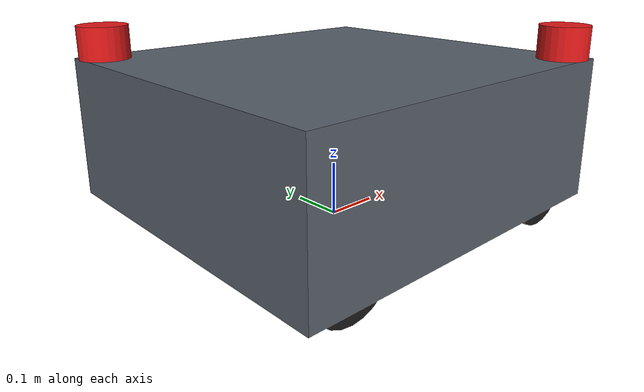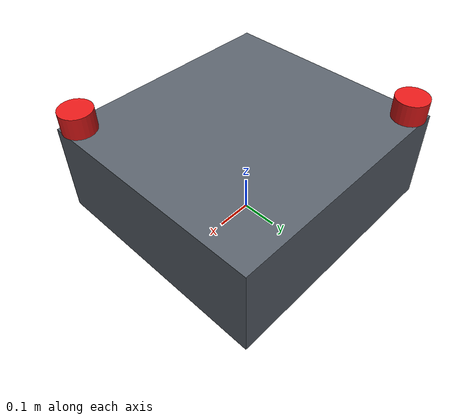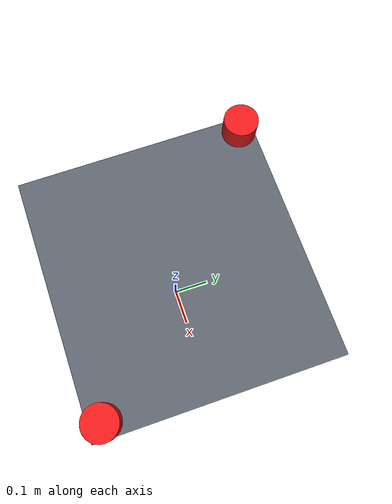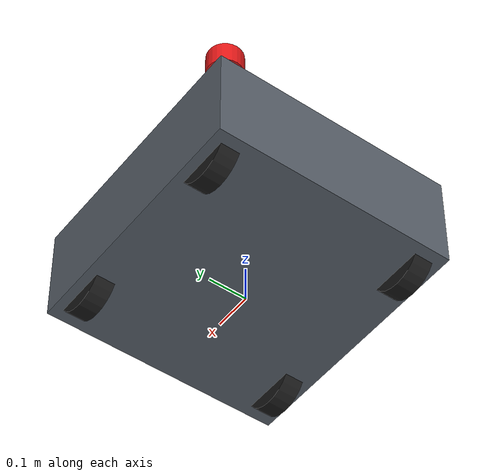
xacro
<?xml version="1.0"?>
<robot name="helios" xmlns:xacro="http://www.ros.org/wiki/xacro">

  <!-- ===================== 底盘几何 ===================== -->
  <xacro:property name="base_length" value="0.68"/>
  <xacro:property name="base_width"  value="0.64"/>
  <xacro:property name="base_height" value="0.26"/>   <!-- 底盘体高（拟合） -->
  <xacro:property name="base_mass"   value="60.0"/>
  <xacro:property name="clearance"   value="0.04"/>   <!-- 底盘底面离地间隙 -->

  <!-- 轮子（4 舵轮，拟合尺寸；planar_move 不依赖轮动力，仅作可视化） -->
  <xacro:property name="wheel_radius"   value="0.08"/>
  <xacro:property name="wheel_width"    value="0.05"/>
  <xacro:property name="wheel_x_offset" value="0.24"/>
  <xacro:property name="wheel_y_offset" value="0.27"/>

  <!-- base_link 取底盘体几何中心：离地 = 间隙 + 体高/2 -->
  <xacro:property name="base_z" value="${clearance + base_height/2.0}"/>

  <!-- 雷达：对角角点安装，略内收于外形半尺寸 (0.34, 0.32) -->
  <xacro:property name="lidar_z"        value="0.16"/>   <!-- 相对 base_link，约在底盘体顶面附近 -->
  <xacro:property name="lidar_front_x"  value="0.30"/>
  <xacro:property name="lidar_front_y"  value="-0.28"/>
  <xacro:property name="lidar_rear_x"   value="-0.30"/>
  <xacro:property name="lidar_rear_y"   value="0.28"/>

  <!-- 雷达扫描参数（对齐真机：360°, 1°, 0.1~25m, 5Hz） -->
  <xacro:property name="lidar_samples"  value="360"/>
  <xacro:property name="lidar_min_ang"  value="-3.14159"/>
  <xacro:property name="lidar_max_ang"  value="3.14159"/>
  <xacro:property name="lidar_min_range" value="0.10"/>
  <xacro:property name="lidar_max_range" value="25.0"/>
  <xacro:property name="lidar_rate"     value="5.0"/>

  <!-- TOF 避障相机占位位姿（相对 base_link，朝外；待厂家确认） -->
  <xacro:property name="tof_z" value="0.0"/>            <!-- 低矮避障，约底盘中部偏下 -->

  <!-- ===================== 惯量宏 ===================== -->
  <xacro:macro name="box_inertia" params="m w h d">
    <inertial>
      <mass value="${m}"/>
      <inertia
        ixx="${m*(h*h+d*d)/12.0}" ixy="0.0" ixz="0.0"
        iyy="${m*(w*w+d*d)/12.0}" iyz="0.0"
        izz="${m*(w*w+h*h)/12.0}"/>
    </inertial>
  </xacro:macro>

  <xacro:macro name="cyl_inertia" params="m r h">
    <inertial>
      <mass value="${m}"/>
      <inertia
        ixx="${m*(3*r*r+h*h)/12.0}" ixy="0.0" ixz="0.0"
        iyy="${m*(3*r*r+h*h)/12.0}" iyz="0.0"
        izz="${m*r*r/2.0}"/>
    </inertial>
  </xacro:macro>

  <!-- ===================== base ===================== -->
  <link name="base_footprint"/>

  <link name="base_link">
    <visual>
      <origin xyz="0 0 0" rpy="0 0 0"/>
      <geometry>
        <box size="${base_length} ${base_width} ${base_height}"/>
      </geometry>
      <material name="gray">
        <color rgba="0.35 0.38 0.42 1.0"/>
      </material>
    </visual>
    <collision>
      <origin xyz="0 0 0" rpy="0 0 0"/>
      <geometry>
        <box size="${base_length} ${base_width} ${base_height}"/>
      </geometry>
    </collision>
    <xacro:box_inertia m="${base_mass}" w="${base_length}" h="${base_width}" d="${base_height}"/>
  </link>

  <joint name="base_joint" type="fixed">
    <parent link="base_footprint"/>
    <child link="base_link"/>
    <origin xyz="0 0 ${base_z}" rpy="0 0 0"/>
  </joint>

  <!-- ===================== 轮子（可视化） ===================== -->
  <xacro:macro name="wheel" params="name x y">
    <link name="${name}">
      <visual>
        <origin xyz="0 0 0" rpy="1.5708 0 0"/>
        <geometry>
          <cylinder radius="${wheel_radius}" length="${wheel_width}"/>
        </geometry>
        <material name="black">
          <color rgba="0.1 0.1 0.1 1.0"/>
        </material>
      </visual>
      <collision>
        <origin xyz="0 0 0" rpy="1.5708 0 0"/>
        <geometry>
          <cylinder radius="${wheel_radius}" length="${wheel_width}"/>
        </geometry>
      </collision>
      <xacro:cyl_inertia m="1.0" r="${wheel_radius}" h="${wheel_width}"/>
    </link>
    <joint name="${name}_joint" type="fixed">
      <parent link="base_link"/>
      <child link="${name}"/>
      <!-- 轮心离地 = wheel_radius，相对 base_link 的 z = wheel_radius - base_z -->
      <origin xyz="${x} ${y} ${wheel_radius - base_z}" rpy="0 0 0"/>
    </joint>
  </xacro:macro>

  <xacro:wheel name="wheel_fl" x="${wheel_x_offset}"  y="${wheel_y_offset}"/>
  <xacro:wheel name="wheel_fr" x="${wheel_x_offset}"  y="${-wheel_y_offset}"/>
  <xacro:wheel name="wheel_rl" x="${-wheel_x_offset}" y="${wheel_y_offset}"/>
  <xacro:wheel name="wheel_rr" x="${-wheel_x_offset}" y="${-wheel_y_offset}"/>

  <!-- ===================== 雷达 link 宏 ===================== -->
  <xacro:macro name="lidar_link" params="name x y z">
    <link name="${name}">
      <visual>
        <geometry>
          <cylinder radius="0.045" length="0.06"/>
        </geometry>
        <material name="red">
          <color rgba="0.9 0.1 0.1 1.0"/>
        </material>
      </visual>
      <collision>
        <geometry>
          <cylinder radius="0.045" length="0.06"/>
        </geometry>
      </collision>
      <xacro:cyl_inertia m="0.2" r="0.045" h="0.06"/>
    </link>
    <joint name="${name}_joint" type="fixed">
      <parent link="base_link"/>
      <child link="${name}"/>
      <origin xyz="${x} ${y} ${z}" rpy="0 0 0"/>
    </joint>
  </xacro:macro>

  <xacro:lidar_link name="right_front_laser_link"
                    x="${lidar_front_x}" y="${lidar_front_y}" z="${lidar_z}"/>
  <xacro:lidar_link name="left_behind_laser_link"
                    x="${lidar_rear_x}" y="${lidar_rear_y}" z="${lidar_z}"/>

  <!-- ===================== TOF 避障相机占位 frame ===================== -->
  <!-- 仅 frame，暂不挂传感器插件；待确认 SDK 接口与外参后再启用 -->
  <xacro:macro name="tof_frame" params="name x y yaw">
    <link name="${name}"/>
    <joint name="${name}_joint" type="fixed">
      <parent link="base_link"/>
      <child link="${name}"/>
      <origin xyz="${x} ${y} ${tof_z}" rpy="0 0 ${yaw}"/>
    </joint>
  </xacro:macro>

  <xacro:tof_frame name="tof_front_link" x="0.34"  y="0.0"  yaw="0.0"/>
  <xacro:tof_frame name="tof_rear_link"  x="-0.34" y="0.0"  yaw="3.14159"/>
  <xacro:tof_frame name="tof_left_link"  x="0.0"   y="0.32" yaw="1.5708"/>
  <xacro:tof_frame name="tof_right_link" x="0.0"   y="-0.32" yaw="-1.5708"/>

  <!-- ===================== Gazebo: 全向底盘 ===================== -->
  <gazebo>
    <plugin name="planar_move" filename="libgazebo_ros_planar_move.so">
      <ros>
        <namespace>/</namespace>
        <remapping>cmd_vel:=cmd_vel</remapping>
        <remapping>odom:=odom</remapping>
      </ros>
      <update_rate>50</update_rate>
      <publish_rate>30</publish_rate>
      <publish_odom>true</publish_odom>
      <publish_odom_tf>true</publish_odom_tf>
      <odometry_frame>odom</odometry_frame>
      <robot_base_frame>base_footprint</robot_base_frame>
      <covariance_x>0.0001</covariance_x>
      <covariance_y>0.0001</covariance_y>
      <covariance_yaw>0.001</covariance_yaw>
    </plugin>
  </gazebo>

  <!-- ===================== Gazebo: 双雷达宏 ===================== -->
  <xacro:macro name="lidar_gazebo" params="link topic">
    <gazebo reference="${link}">
      <material>Gazebo/Red</material>
      <sensor name="${link}_sensor" type="ray">
        <always_on>true</always_on>
        <visualize>false</visualize>
        <update_rate>${lidar_rate}</update_rate>
        <ray>
          <scan>
            <horizontal>
              <samples>${lidar_samples}</samples>
              <resolution>1</resolution>
              <min_angle>${lidar_min_ang}</min_angle>
              <max_angle>${lidar_max_ang}</max_angle>
            </horizontal>
          </scan>
          <range>
            <min>${lidar_min_range}</min>
            <max>${lidar_max_range}</max>
            <resolution>0.01</resolution>
          </range>
          <noise>
            <type>gaussian</type>
            <mean>0.0</mean>
            <stddev>0.01</stddev>
          </noise>
        </ray>
        <plugin name="${link}_plugin" filename="libgazebo_ros_ray_sensor.so">
          <ros>
            <remapping>~/out:=${topic}</remapping>
          </ros>
          <output_type>sensor_msgs/LaserScan</output_type>
          <frame_name>${link}</frame_name>
        </plugin>
      </sensor>
    </gazebo>
  </xacro:macro>

  <xacro:lidar_gazebo link="right_front_laser_link" topic="/sr_amr_control/front/scan"/>
  <xacro:lidar_gazebo link="left_behind_laser_link" topic="/sr_amr_control/rear/scan"/>

  <gazebo reference="base_link">
    <material>Gazebo/Gray</material>
  </gazebo>

  <gazebo reference="wheel_fl"><material>Gazebo/Black</material></gazebo>
  <gazebo reference="wheel_fr"><material>Gazebo/Black</material></gazebo>
  <gazebo reference="wheel_rl"><material>Gazebo/Black</material></gazebo>
  <gazebo reference="wheel_rr"><material>Gazebo/Black</material></gazebo>

</robot>
